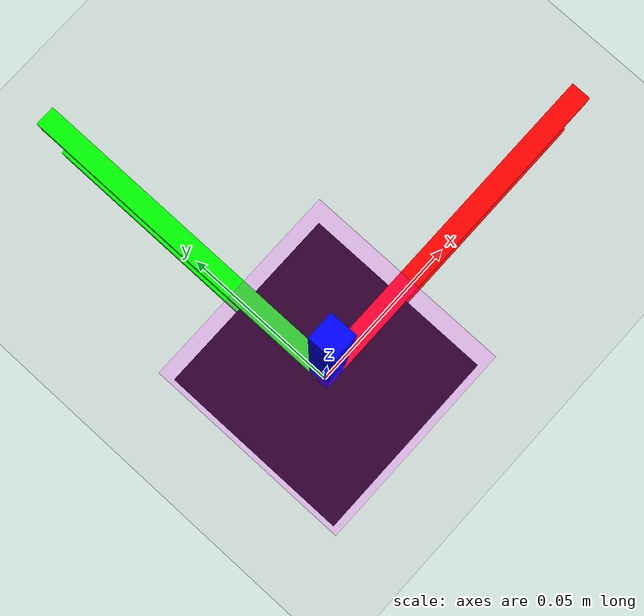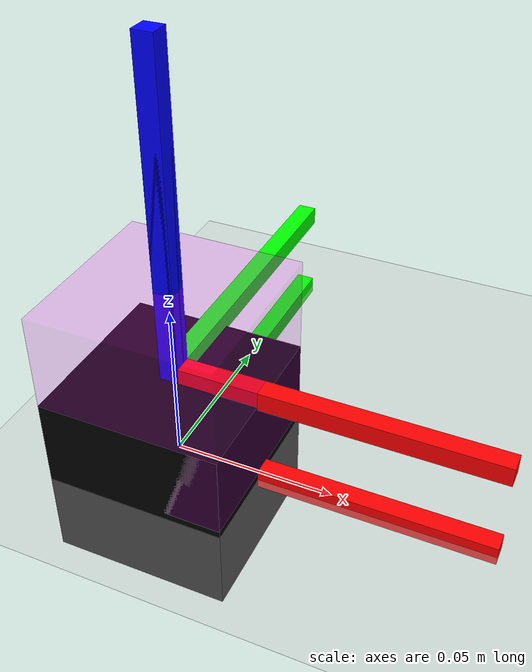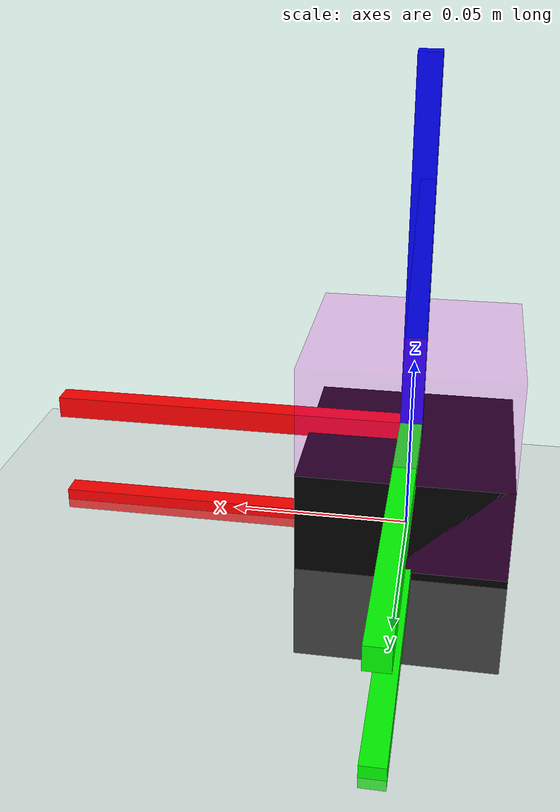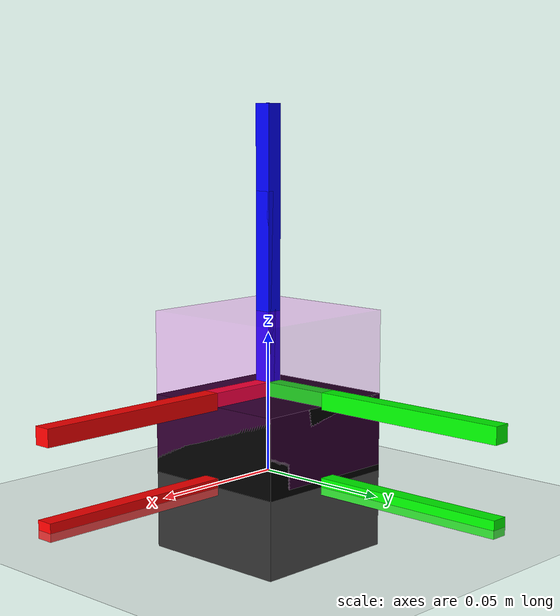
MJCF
<mujoco model="three_fingertip_cube">
    <compiler angle="radian"/>
    <size njmax="500" nconmax="100"/>
    <asset>
        <mesh name="object" file="../../env/pc/real_cube.stl"/>
        <texture name='cube_surface' file="../textures/iris_block.png" gridsize="3 4" gridlayout=".U..LFRB.D.."/>
        <material name="MatCube" texture="cube_surface" specular="1.0" shininess="0"/>
        <texture type="2d" name="groundplane" builtin="checker" mark="edge" rgb1="0.2 0.3 0.4"
        rgb2="0.1 0.2 0.3" markrgb="0.8 0.8 0.8" width="300" height="300"/>
        <material name="groundplane" texture="groundplane" texuniform="true" texrepeat="5 5"
        reflectance="0.2"/>
    </asset>

    <worldbody>
        <light pos="0 0 1"/>
        <light pos="0.3 0 1.5" dir="0 0 -1" directional="true"/>
        <light diffuse="0.9 0.9 0.9" pos="2 2 2" dir="0 0 -1" directional="true"/>

        <!-- ============================= virtual obj ========================================= -->
        <!-- pos and quat attributes of virtual obj must be put in 'geom' -->
        <body name="goal" pos="0.0 0.0 0.03">
            <geom name="vcube" size="0.028 0.028 0.028" material="MatCube" type="box" conaffinity="0" contype="0"
                  rgba="1 0  1 0.2"/>
            <site type="box" size="0.05 0.003 0.003" rgba="1 0 0 1" pos="0.05 0 0"/>
            <site type="box" size="0.003 0.05 0.003" rgba="0 1 0 1" pos="0 0.05 0"/>
            <site type="box" size="0.003 0.003 0.05" rgba="0 0 1 1" pos="0 0 0.05"/>
        </body>

        <!-- ============================= real obj ========================================= -->
        <body name="cube" >
            <freejoint name="cube_table"/>
            <geom name="cube" type="mesh" mesh="object" material="MatCube"
                pos="0.0 0.0 0.0" quat="1 0 0 0"
                mass="0.01"
                condim="6"
                friction="0.5" rgba="0 0 0 1.0"/>
            <site type="box" size="0.05 0.003 0.003" rgba="1 0 0 1" pos="0.05 0 0"/>
            <site type="box" size="0.003 0.05 0.003" rgba="0 1 0 1" pos="0 0.05 0"/>
            <site type="box" size="0.003 0.003 0.05" rgba="0 0 1 1" pos="0 0 0.05"/>
        </body>

        <geom name="table" rgba="0.8 0.8 0.8 1.0" friction="0.5"
                size="0 0 0.05" type="plane" material="groundplane"
                condim="6"
              />

        <body name="fingertip0" pos="0.0 0.0 0.0" quat="1 0 0 0">
            <joint name="fingertip0_x" type="slide" axis="1 0 0"/>
            <joint name="fingertip0_y" type="slide" axis="0 1 0"/>
            <joint name="fingertip0_z" type="slide" axis="0 0 1"/>
            <geom name="fingertip0"
                condim="6"
                pos="0.0 0.0 0.0" quat="1 0 0 0"
                size="0.01" type="sphere" friction="0.5" rgba="0.5 0 0 1"/>
        </body>

        <body name="fingertip1" pos="0.0 0.0 0.0" quat="1 0 0 0">
            <joint name="fingertip1_x" type="slide" axis="1 0 0"/>
            <joint name="fingertip1_y" type="slide" axis="0 1 0"/>
            <joint name="fingertip1_z" type="slide" axis="0 0 1"/>
            <geom name="fingertip1"
                condim="6"
                pos="0.0 0.0 0.0" quat="1 0 0 0"
                size="0.01" type="sphere" friction="0.5" rgba="0 0.5 0 1"/>
        </body>

        <body name="fingertip2" pos="0.0 0.0 0.0" quat="1 0 0 0">
            <joint name="fingertip2_x" type="slide" axis="1 0 0"/>
            <joint name="fingertip2_y" type="slide" axis="0 1 0"/>
            <joint name="fingertip2_z" type="slide" axis="0 0 1"/>
            <geom name="fingertip2"
                condim="6"
                pos="0.0 0.0 0.0" quat="1 0 0 0"
                size="0.01" type="sphere" friction="0.5" rgba="0 0 0.5 1"/>
        </body>

    </worldbody>

    <actuator>
        <motor name="fingertip0_refx" joint="fingertip0_x" ctrlrange="-1.5 1.5" ctrllimited="false"/>
        <motor name="fingertip0_refy" joint="fingertip0_y" ctrlrange="-1.5 1.5" ctrllimited="false"/>
        <motor name="fingertip0_refz" joint="fingertip0_z" ctrlrange="-1.5 1.5" ctrllimited="false"/>
        <motor name="fingertip1_refx" joint="fingertip1_x" ctrlrange="-1.5 1.5" ctrllimited="false"/>
        <motor name="fingertip1_refy" joint="fingertip1_y" ctrlrange="-1.5 1.5" ctrllimited="false"/>
        <motor name="fingertip1_refz" joint="fingertip1_z" ctrlrange="-1.5 1.5" ctrllimited="false"/>
        <motor name="fingertip2_refx" joint="fingertip2_x" ctrlrange="-1.5 1.5" ctrllimited="false"/>
        <motor name="fingertip2_refy" joint="fingertip2_y" ctrlrange="-1.5 1.5" ctrllimited="false"/>
        <motor name="fingertip2_refz" joint="fingertip2_z" ctrlrange="-1.5 1.5" ctrllimited="false"/>
    </actuator>
</mujoco>
